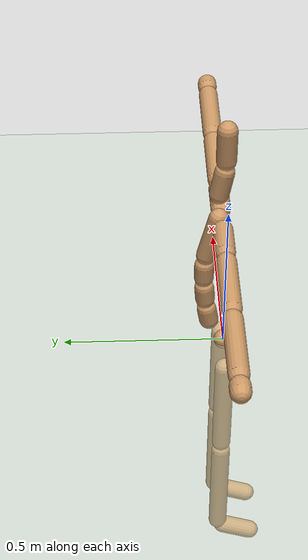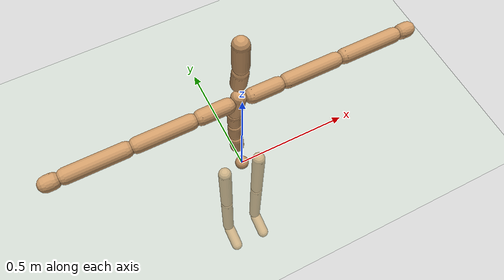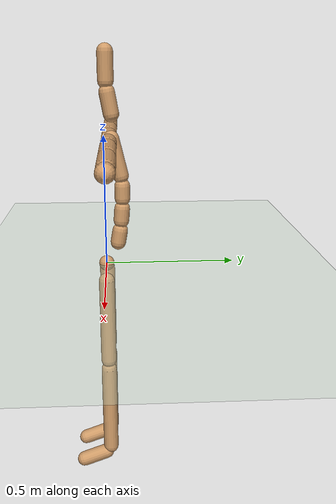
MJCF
<mujoco model="humanoid">
  <compiler angle="degree" inertiafromgeom="true" coordinate="global"/>
  <include file="./common/materials.xml"/>
  <visual>
    <headlight ambient=".4 .4 .4" diffuse=".8 .8 .8" specular="0.1 0.1 0.1"/>
    <map znear=".01"/>
    <quality shadowsize="2048"/>
  </visual>
  <default>
    <joint damping="0.0" armature="0.01" stiffness="0.0" limited="true"/>
    <geom conaffinity="7" condim="1" contype="7" margin="0.001" material="self" rgba="0.8 0.6 .4 1"/>
  </default>
  <statistic extent="3" center="0 0 1"/>
  <option timestep="0.00222222222"/>
  <asset>
    <texture type="skybox" file="./common/sky1.png" gridsize="3 4" gridlayout=".U..LFRB.D.." width="8192" height="8192"/>
    <texture builtin="flat" height="1278" mark="cross" markrgb="1 1 1" name="texgeom" random="0.01" rgb1=".8 .6 .4" rgb2=".8 .6 .4" type="cube" width="127"/>
  </asset>
  <worldbody>
    <light cutoff="100" diffuse="1 1 1" dir="-0 0 -1.3" directional="true" exponent="1" pos="0 0 1.3" specular=".1 .1 .1"/>
    <geom condim="3" friction="1. .1 .1" material="grid" name="floor" pos="0 0 0" rgba=".8 .9 .8 1" size="100 100 .2" type="plane"/>
    <body name="Hips" user="0.0000 0.0146 0.0054">
      <joint armature="0" damping="0" limited="false" name="Hips" pos="0.0000 0.0000 0.0000" stiffness="0" type="free"/>
      <geom pos="0.0000 0.0000 0.0000" size="0.03" type="sphere"/>
      <body name="Spine" user="0.0000 0.0591 0.1523">
        <joint axis="1.0000 0.0000 0.0000" name="Spine_x" pos="0.0000 0.0439 0.0658" range="-180.0000 180.0000" type="hinge"/>
        <joint axis="0.0000 1.0000 0.0000" name="Spine_y" pos="0.0000 0.0439 0.0658" range="-180.0000 180.0000" type="hinge"/>
        <joint axis="0.0000 0.0000 1.0000" name="Spine_z" pos="0.0000 0.0439 0.0658" range="-180.0000 180.0000" type="hinge"/>
        <geom fromto="0.0000 0.0474 0.0855 0.0000 0.0557 0.1326" size="0.03" type="capsule"/>
        <body name="Spine1" user="0.0000 0.0668 0.2397">
          <joint axis="1.0000 0.0000 0.0000" name="Spine1_x" pos="0.0000 0.0591 0.1523" range="-180.0000 180.0000" type="hinge"/>
          <joint axis="0.0000 1.0000 0.0000" name="Spine1_y" pos="0.0000 0.0591 0.1523" range="-180.0000 180.0000" type="hinge"/>
          <joint axis="0.0000 0.0000 1.0000" name="Spine1_z" pos="0.0000 0.0591 0.1523" range="-180.0000 180.0000" type="hinge"/>
          <geom fromto="0.0000 0.0609 0.1722 0.0000 0.0650 0.2198" size="0.03" type="capsule"/>
          <body name="Spine2" user="0.0000 0.0668 0.3275">
            <joint axis="1.0000 0.0000 0.0000" name="Spine2_x" pos="0.0000 0.0668 0.2397" range="-180.0000 180.0000" type="hinge"/>
            <joint axis="0.0000 1.0000 0.0000" name="Spine2_y" pos="0.0000 0.0668 0.2397" range="-180.0000 180.0000" type="hinge"/>
            <joint axis="0.0000 0.0000 1.0000" name="Spine2_z" pos="0.0000 0.0668 0.2397" range="-180.0000 180.0000" type="hinge"/>
            <geom fromto="0.0000 0.0668 0.2597 0.0000 0.0668 0.3075" size="0.03" type="capsule"/>
            <body name="Spine3" user="0.0000 0.0240 0.5074">
              <joint axis="1.0000 0.0000 0.0000" name="Spine3_x" pos="0.0000 0.0668 0.3275" range="-180.0000 180.0000" type="hinge"/>
              <joint axis="0.0000 1.0000 0.0000" name="Spine3_y" pos="0.0000 0.0668 0.3275" range="-180.0000 180.0000" type="hinge"/>
              <joint axis="0.0000 0.0000 1.0000" name="Spine3_z" pos="0.0000 0.0668 0.3275" range="-180.0000 180.0000" type="hinge"/>
              <geom fromto="0.0000 0.0622 0.3469 0.0000 0.0286 0.4879" size="0.03" type="capsule"/>
              <body name="Neck" user="0.0000 0.0129 0.6768">
                <joint axis="1.0000 0.0000 0.0000" name="Neck_x" pos="0.0000 0.0339 0.5579" range="-180.0000 180.0000" type="hinge"/>
                <joint axis="0.0000 1.0000 0.0000" name="Neck_y" pos="0.0000 0.0339 0.5579" range="-180.0000 180.0000" type="hinge"/>
                <joint axis="0.0000 0.0000 1.0000" name="Neck_z" pos="0.0000 0.0339 0.5579" range="-180.0000 180.0000" type="hinge"/>
                <geom fromto="0.0000 0.0304 0.5776 0.0000 0.0164 0.6571" size="0.03" type="capsule"/>
                <body name="Head" user="0.0000 0.0129 0.8188">
                  <joint axis="1.0000 0.0000 0.0000" name="Head_x" pos="0.0000 0.0129 0.6768" range="-180.0000 180.0000" type="hinge"/>
                  <joint axis="0.0000 1.0000 0.0000" name="Head_y" pos="0.0000 0.0129 0.6768" range="-180.0000 180.0000" type="hinge"/>
                  <joint axis="0.0000 0.0000 1.0000" name="Head_z" pos="0.0000 0.0129 0.6768" range="-180.0000 180.0000" type="hinge"/>
                  <geom fromto="0.0000 0.0129 0.6968 0.0000 0.0129 0.7988" size="0.03" type="capsule"/>
                </body>
              </body>
              <body name="RightShoulder" user="-0.1708 0.0191 0.4821">
                <joint axis="1.0000 0.0000 0.0000" name="RightShoulder_x" pos="-0.0286 0.0191 0.4821" range="-180.0000 180.0000" type="hinge"/>
                <joint axis="0.0000 1.0000 0.0000" name="RightShoulder_y" pos="-0.0286 0.0191 0.4821" range="-180.0000 180.0000" type="hinge"/>
                <joint axis="0.0000 0.0000 1.0000" name="RightShoulder_z" pos="-0.0286 0.0191 0.4821" range="-180.0000 180.0000" type="hinge"/>
                <geom fromto="-0.0486 0.0191 0.4821 -0.1508 0.0191 0.4821" size="0.03" type="capsule"/>
                <body name="RightArm" user="-0.4103 0.0191 0.4821">
                  <joint axis="1.0000 0.0000 0.0000" name="RightArm_x" pos="-0.1708 0.0191 0.4821" range="-180.0000 180.0000" type="hinge"/>
                  <joint axis="0.0000 1.0000 0.0000" name="RightArm_y" pos="-0.1708 0.0191 0.4821" range="-180.0000 180.0000" type="hinge"/>
                  <joint axis="0.0000 0.0000 1.0000" name="RightArm_z" pos="-0.1708 0.0191 0.4821" range="-180.0000 180.0000" type="hinge"/>
                  <geom fromto="-0.1908 0.0191 0.4821 -0.3903 0.0191 0.4821" size="0.03" type="capsule"/>
                  <body name="RightForeArm" user="-0.6643 0.0191 0.4821">
                    <joint axis="0.0000 0.0000 1.0000" name="RightForeArm_z" pos="-0.4103 0.0191 0.4821" range="-180.0000 180.0000" type="hinge"/>
                    <geom fromto="-0.4303 0.0191 0.4821 -0.6443 0.0191 0.4821" size="0.03" type="capsule"/>
                    <body name="RightHand" user="-0.7282 0.0191 0.4821">
                      <joint axis="1.0000 0.0000 0.0000" name="RightHand_x" pos="-0.6643 0.0191 0.4821" range="-180.0000 180.0000" type="hinge"/>
                      <joint axis="0.0000 1.0000 0.0000" name="RightHand_y" pos="-0.6643 0.0191 0.4821" range="-180.0000 180.0000" type="hinge"/>
                      <joint axis="0.0000 0.0000 1.0000" name="RightHand_z" pos="-0.6643 0.0191 0.4821" range="-180.0000 180.0000" type="hinge"/>
                      <geom fromto="-0.6843 0.0191 0.4821 -0.7082 0.0191 0.4821" size="0.03" type="capsule"/>
                    </body>
                  </body>
                </body>
              </body>
              <body name="LeftShoulder" user="0.1708 0.0191 0.4821">
                <joint axis="1.0000 0.0000 0.0000" name="LeftShoulder_x" pos="0.0286 0.0191 0.4821" range="-180.0000 180.0000" type="hinge"/>
                <joint axis="0.0000 1.0000 0.0000" name="LeftShoulder_y" pos="0.0286 0.0191 0.4821" range="-180.0000 180.0000" type="hinge"/>
                <joint axis="0.0000 0.0000 1.0000" name="LeftShoulder_z" pos="0.0286 0.0191 0.4821" range="-180.0000 180.0000" type="hinge"/>
                <geom fromto="0.0486 0.0191 0.4821 0.1508 0.0191 0.4821" size="0.03" type="capsule"/>
                <body name="LeftArm" user="0.4103 0.0191 0.4821">
                  <joint axis="1.0000 0.0000 0.0000" name="LeftArm_x" pos="0.1708 0.0191 0.4821" range="-180.0000 180.0000" type="hinge"/>
                  <joint axis="0.0000 1.0000 0.0000" name="LeftArm_y" pos="0.1708 0.0191 0.4821" range="-180.0000 180.0000" type="hinge"/>
                  <joint axis="0.0000 0.0000 1.0000" name="LeftArm_z" pos="0.1708 0.0191 0.4821" range="-180.0000 180.0000" type="hinge"/>
                  <geom fromto="0.1908 0.0191 0.4821 0.3903 0.0191 0.4821" size="0.03" type="capsule"/>
                  <body name="LeftForeArm" user="0.6643 0.0191 0.4821">
                    <joint axis="0.0000 0.0000 1.0000" name="LeftForeArm_z" pos="0.4103 0.0191 0.4821" range="-180.0000 180.0000" type="hinge"/>
                    <geom fromto="0.4303 0.0191 0.4821 0.6443 0.0191 0.4821" size="0.03" type="capsule"/>
                    <body name="LeftHand" user="0.7282 0.0191 0.4821">
                      <joint axis="1.0000 0.0000 0.0000" name="LeftHand_x" pos="0.6643 0.0191 0.4821" range="-180.0000 180.0000" type="hinge"/>
                      <joint axis="0.0000 1.0000 0.0000" name="LeftHand_y" pos="0.6643 0.0191 0.4821" range="-180.0000 180.0000" type="hinge"/>
                      <joint axis="0.0000 0.0000 1.0000" name="LeftHand_z" pos="0.6643 0.0191 0.4821" range="-180.0000 180.0000" type="hinge"/>
                      <geom fromto="0.6843 0.0191 0.4821 0.7082 0.0191 0.4821" size="0.03" type="capsule"/>
                    </body>
                  </body>
                </body>
              </body>
            </body>
          </body>
        </body>
      </body>
      <body name="RightUpLeg" user="-0.0849 0.0000 -0.4027">
        <joint axis="1.0000 0.0000 0.0000" name="RightUpLeg_x" pos="-0.0849 0.0000 -0.0248" range="-180.0000 180.0000" type="hinge"/>
        <joint axis="0.0000 1.0000 0.0000" name="RightUpLeg_y" pos="-0.0849 0.0000 -0.0248" range="-180.0000 180.0000" type="hinge"/>
        <joint axis="0.0000 0.0000 1.0000" name="RightUpLeg_z" pos="-0.0849 0.0000 -0.0248" range="-180.0000 180.0000" type="hinge"/>
        <geom fromto="-0.0849 0.0000 -0.0448 -0.0849 0.0000 -0.3827" size="0.03" type="capsule"/>
        <body name="RightLeg" user="-0.0849 0.0000 -0.7988">
          <joint axis="1.0000 0.0000 0.0000" name="RightLeg_x" pos="-0.0849 0.0000 -0.4027" range="-180.0000 180.0000" type="hinge"/>
          <geom fromto="-0.0849 0.0000 -0.4227 -0.0849 0.0000 -0.7788" size="0.03" type="capsule"/>
          <body name="RightFoot" user="-0.0849 -0.1308 -0.8464">
            <joint axis="1.0000 0.0000 0.0000" name="RightFoot_x" pos="-0.0849 0.0000 -0.7988" range="-180.0000 180.0000" type="hinge"/>
            <joint axis="0.0000 1.0000 0.0000" name="RightFoot_y" pos="-0.0849 0.0000 -0.7988" range="-180.0000 180.0000" type="hinge"/>
            <joint axis="0.0000 0.0000 1.0000" name="RightFoot_z" pos="-0.0849 0.0000 -0.7988" range="-180.0000 180.0000" type="hinge"/>
            <geom fromto="-0.0849 -0.0188 -0.8057 -0.0849 -0.1121 -0.8396" size="0.03" type="capsule"/>
          </body>
        </body>
      </body>
      <body name="LeftUpLeg" user="0.0849 0.0000 -0.4027">
        <joint axis="1.0000 0.0000 0.0000" name="LeftUpLeg_x" pos="0.0849 0.0000 -0.0248" range="-180.0000 180.0000" type="hinge"/>
        <joint axis="0.0000 1.0000 0.0000" name="LeftUpLeg_y" pos="0.0849 0.0000 -0.0248" range="-180.0000 180.0000" type="hinge"/>
        <joint axis="0.0000 0.0000 1.0000" name="LeftUpLeg_z" pos="0.0849 0.0000 -0.0248" range="-180.0000 180.0000" type="hinge"/>
        <geom fromto="0.0849 0.0000 -0.0448 0.0849 0.0000 -0.3827" size="0.03" type="capsule"/>
        <body name="LeftLeg" user="0.0849 0.0000 -0.7988">
          <joint axis="1.0000 0.0000 0.0000" name="LeftLeg_x" pos="0.0849 0.0000 -0.4027" range="-180.0000 180.0000" type="hinge"/>
          <geom fromto="0.0849 0.0000 -0.4227 0.0849 0.0000 -0.7788" size="0.03" type="capsule"/>
          <body name="LeftFoot" user="0.0849 -0.1308 -0.8464">
            <joint axis="1.0000 0.0000 0.0000" name="LeftFoot_x" pos="0.0849 0.0000 -0.7988" range="-180.0000 180.0000" type="hinge"/>
            <joint axis="0.0000 1.0000 0.0000" name="LeftFoot_y" pos="0.0849 0.0000 -0.7988" range="-180.0000 180.0000" type="hinge"/>
            <joint axis="0.0000 0.0000 1.0000" name="LeftFoot_z" pos="0.0849 0.0000 -0.7988" range="-180.0000 180.0000" type="hinge"/>
            <geom fromto="0.0849 -0.0188 -0.8057 0.0849 -0.1121 -0.8396" size="0.03" type="capsule"/>
          </body>
        </body>
      </body>
    </body>
  </worldbody>
  <actuator>
    <motor gear="1" joint="Spine_x" name="Spine_x"/>
    <motor gear="1" joint="Spine_y" name="Spine_y"/>
    <motor gear="1" joint="Spine_z" name="Spine_z"/>
    <motor gear="1" joint="Spine1_x" name="Spine1_x"/>
    <motor gear="1" joint="Spine1_y" name="Spine1_y"/>
    <motor gear="1" joint="Spine1_z" name="Spine1_z"/>
    <motor gear="1" joint="Spine2_x" name="Spine2_x"/>
    <motor gear="1" joint="Spine2_y" name="Spine2_y"/>
    <motor gear="1" joint="Spine2_z" name="Spine2_z"/>
    <motor gear="1" joint="Spine3_x" name="Spine3_x"/>
    <motor gear="1" joint="Spine3_y" name="Spine3_y"/>
    <motor gear="1" joint="Spine3_z" name="Spine3_z"/>
    <motor gear="1" joint="Neck_x" name="Neck_x"/>
    <motor gear="1" joint="Neck_y" name="Neck_y"/>
    <motor gear="1" joint="Neck_z" name="Neck_z"/>
    <motor gear="1" joint="Head_x" name="Head_x"/>
    <motor gear="1" joint="Head_y" name="Head_y"/>
    <motor gear="1" joint="Head_z" name="Head_z"/>
    <motor gear="1" joint="RightShoulder_x" name="RightShoulder_x"/>
    <motor gear="1" joint="RightShoulder_y" name="RightShoulder_y"/>
    <motor gear="1" joint="RightShoulder_z" name="RightShoulder_z"/>
    <motor gear="1" joint="RightArm_x" name="RightArm_x"/>
    <motor gear="1" joint="RightArm_y" name="RightArm_y"/>
    <motor gear="1" joint="RightArm_z" name="RightArm_z"/>
    <motor gear="1" joint="RightForeArm_z" name="RightForeArm_z"/>
    <motor gear="1" joint="RightHand_x" name="RightHand_x"/>
    <motor gear="1" joint="RightHand_y" name="RightHand_y"/>
    <motor gear="1" joint="RightHand_z" name="RightHand_z"/>
    <motor gear="1" joint="LeftShoulder_x" name="LeftShoulder_x"/>
    <motor gear="1" joint="LeftShoulder_y" name="LeftShoulder_y"/>
    <motor gear="1" joint="LeftShoulder_z" name="LeftShoulder_z"/>
    <motor gear="1" joint="LeftArm_x" name="LeftArm_x"/>
    <motor gear="1" joint="LeftArm_y" name="LeftArm_y"/>
    <motor gear="1" joint="LeftArm_z" name="LeftArm_z"/>
    <motor gear="1" joint="LeftForeArm_z" name="LeftForeArm_z"/>
    <motor gear="1" joint="LeftHand_x" name="LeftHand_x"/>
    <motor gear="1" joint="LeftHand_y" name="LeftHand_y"/>
    <motor gear="1" joint="LeftHand_z" name="LeftHand_z"/>
    <motor gear="1" joint="RightUpLeg_x" name="RightUpLeg_x"/>
    <motor gear="1" joint="RightUpLeg_y" name="RightUpLeg_y"/>
    <motor gear="1" joint="RightUpLeg_z" name="RightUpLeg_z"/>
    <motor gear="1" joint="RightLeg_x" name="RightLeg_x"/>
    <motor gear="1" joint="RightFoot_x" name="RightFoot_x"/>
    <motor gear="1" joint="RightFoot_y" name="RightFoot_y"/>
    <motor gear="1" joint="RightFoot_z" name="RightFoot_z"/>
    <motor gear="1" joint="LeftUpLeg_x" name="LeftUpLeg_x"/>
    <motor gear="1" joint="LeftUpLeg_y" name="LeftUpLeg_y"/>
    <motor gear="1" joint="LeftUpLeg_z" name="LeftUpLeg_z"/>
    <motor gear="1" joint="LeftLeg_x" name="LeftLeg_x"/>
    <motor gear="1" joint="LeftFoot_x" name="LeftFoot_x"/>
    <motor gear="1" joint="LeftFoot_y" name="LeftFoot_y"/>
    <motor gear="1" joint="LeftFoot_z" name="LeftFoot_z"/>
  </actuator>
</mujoco>

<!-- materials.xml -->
<!--
Common textures, colors and materials to be used throughout this suite. Some
materials such as xxx_highlight are activated on occurence of certain events,
for example receiving a positive reward.
-->
<mujoco>
  <asset>
    <texture name="grid" type="2d" builtin="checker" rgb1=".1 .2 .3" rgb2=".2 .3 .4" width="300" height="300" mark="edge" markrgb=".2 .3 .4"/>
    <material name="grid" texture="grid" texrepeat="1 1" texuniform="true" reflectance=".2"/>
    <texture builtin="checker" height="100" name="texplane" rgb1="0 0 0" rgb2=".8 .8 .8" type="2d" width="100"/>
    <texture name="grass" file="./common/grass.png" type="2d"/>

    <texture name="grid_new" type="2d" builtin="checker" rgb1=".1 .3 .2" rgb2=".2 .4 .3" width="1000" height="1000" mark="none" markrgb=".8 .6 .4"/>
    <material name="grid_new" texture="grid_new" texrepeat="0.2 0.2" texuniform="true" reflectance=".2"/>
    <material name="MatPlane" reflectance="0.5" shininess="1" specular="1" texrepeat="60 60" texture="texplane"/>
    <material name="GrassPlane" reflectance="0.0" shininess="1" specular="1" texrepeat="400 400" texture="grass"/>
    <material name="self" rgba=".7 .5 .3 1"/>
    <material name="self_default" rgba=".7 .5 .3 1"/>
    <material name="self_highlight" rgba="0 .5 .3 1"/>
    <material name="effector" rgba=".7 .4 .2 1"/>
    <material name="effector_default" rgba=".7 .4 .2 1"/>
    <material name="effector_highlight" rgba="0 .5 .3 1"/>
    <material name="decoration" rgba=".3 .5 .7 1"/>
    <material name="eye" rgba="0 .2 1 1"/>
    <material name="target" rgba=".6 .3 .3 1"/>
    <material name="target_default" rgba=".6 .3 .3 1"/>
    <material name="target_highlight" rgba=".6 .3 .3 .4"/>
    <material name="expert" rgba=".6 .3 .3 .4"/>
  </asset>
</mujoco>
